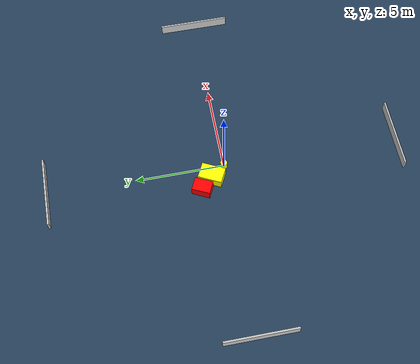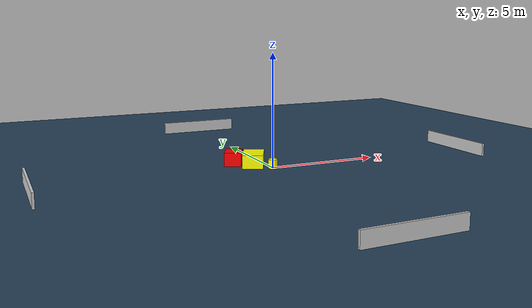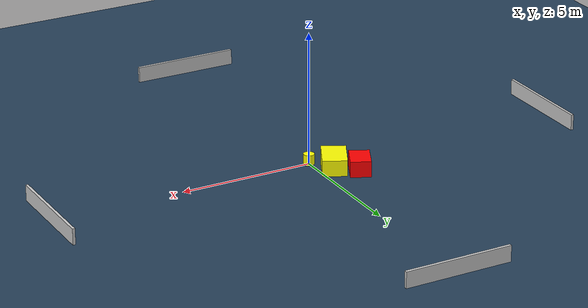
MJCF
<?xml version="1.0" ?>
<mujoco model="generated_environment">
  <option timestep="0.01" integrator="RK4" cone="elliptic"/>
  <default>
    <geom density="1"/>
  </default>
  <asset>
    <texture builtin="gradient" height="3072" name="skybox" rgb1="0.3 0.5 0.7" rgb2="0 0 0" type="skybox" width="512"/>
    <texture builtin="checker" height="300" name="groundplane" rgb1="0.2 0.3 0.4" rgb2="0.1 0.2 0.3" type="2d" width="300"/>
    <material name="groundplane" reflectance="0.2" texrepeat="5 5" texture="groundplane"/>
  </asset>
  <worldbody>
    <light dir="0 0 -1" directional="true" pos="0 0 1.5"/>
    <geom condim="3" friction="0.5 0.005 0.001" material="groundplane" name="floor" pos="0 0 0" size="0 0 0.05" type="plane"/>
    <body name="walls">
      <geom name="wall_1" condim="4" pos="-10.0 0.0 0.3" rgba="0.800000011920929 0.800000011920929 0.800000011920929 1.0" size="0.05 2.0 0.3" type="box"/>
      <geom name="wall_2" condim="4" pos="10.0 0.0 0.3" rgba="0.800000011920929 0.800000011920929 0.800000011920929 1.0" size="0.05 2.0 0.3" type="box"/>
      <geom name="wall_3" condim="4" pos="0.0 -10.0 0.3" rgba="0.800000011920929 0.800000011920929 0.800000011920929 1.0" size="2.0 0.05 0.3" type="box"/>
      <geom name="wall_4" condim="4" pos="0.0 10.0 0.3" rgba="0.800000011920929 0.800000011920929 0.800000011920929 1.0" size="2.0 0.05 0.3" type="box"/>
    </body>
    <body name="robot">
      <joint name="joint_x" type="slide" pos="0 0 0" axis="1 0 0"/>
      <joint name="joint_y" type="slide" pos="0 0 0" axis="0 1 0"/>
      <geom name="robot" type="cylinder" pos="0.0 0.0 0.2" size="0.2 0.2 0.0" mass="5.0" friction="1.0 0.005 0.0001" condim="4" rgba="1.0 1.0 0.0 1.0"/>
    </body>
    <body name="obstacle_1_movable">
      <geom name="obstacle_1_movable" condim="4" pos="-0.5831410908555833 0.7947397781390741 0.3" euler="0 0 333.2378807617327" friction="0.0 0.005 0.001" rgba="1.0 1.0 0.0 1.0" size="0.45365126219656243 0.6765138661812446 0.3" type="box" mass="0.1"/>
      <joint type="free"/>
    </body>
    <body name="obstacle_2_static">
      <geom name="obstacle_2_static" condim="4" pos="-1.2664986451161078 1.4441622373777518 0.3" euler="0 0 153.98486300112586" friction="0.0 0.005 0.001" rgba="1.0 0.0 0.0 1.0" size="0.37533745143715125 0.5168019144576372 0.3" type="box"/>
    </body>
  </worldbody>
  <actuator>
    <motor name="actuator_x" joint="joint_x" gear="1" ctrlrange="-1 1"/>
    <motor name="actuator_y" joint="joint_y" gear="1" ctrlrange="-1 1"/>
  </actuator>
</mujoco>
